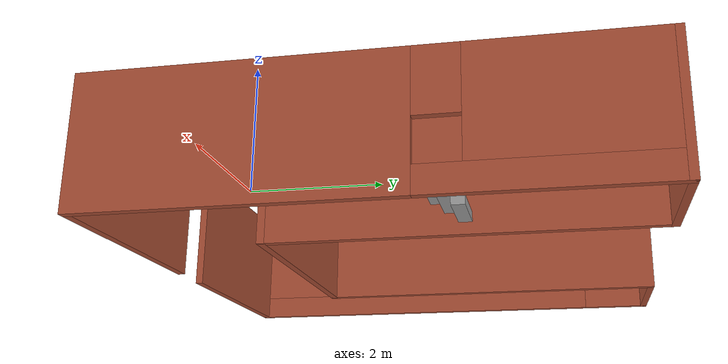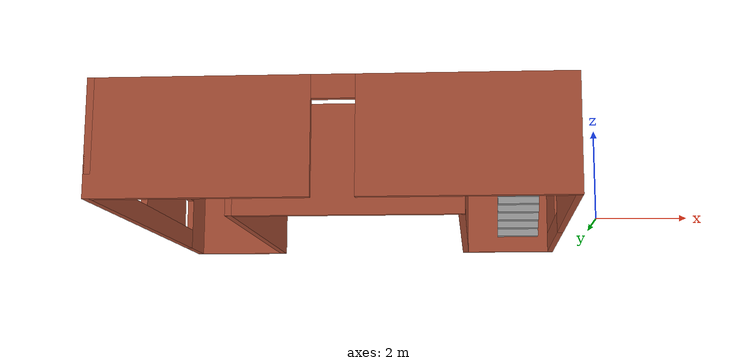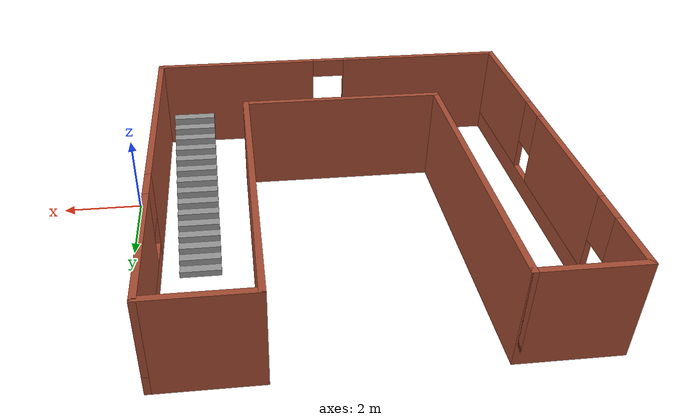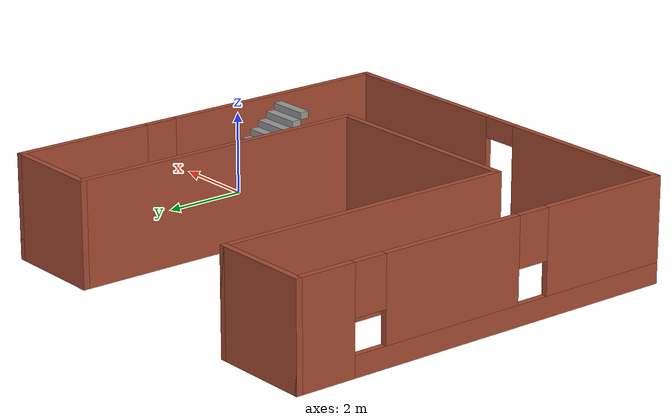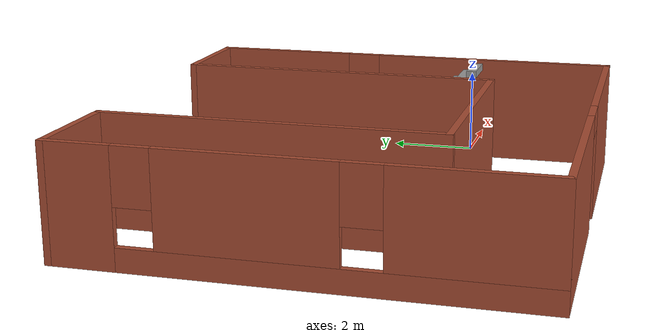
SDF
<?xml version='1.0'?>
<sdf version='1.6'>
  <model name='BuildingModel'>
    <pose frame=''>-5.28181 1.51106 0 0 -0 0</pose>
    <link name='Stairs_0'>
      <visual name='Stairs_0_Visual_0'>
        <pose frame=''>3.62997 1.43958 0.083333 0 -0 0</pose>
        <geometry>
          <box>
            <size>1 0.233333 0.166667</size>
          </box>
        </geometry>
        <material>
          <script>
            <uri>file://media/materials/scripts/gazebo.material</uri>
            <name>Gazebo/Grey</name>
          </script>
          <ambient>1 1 1 1</ambient>
        </material>
        <meta>
          <layer>0</layer>
        </meta>
      </visual>
      <collision name='Stairs_0_Collision_0'>
        <geometry>
          <box>
            <size>1 0.233333 0.166667</size>
          </box>
        </geometry>
        <pose frame=''>3.62997 1.43958 0.083333 0 -0 0</pose>
      </collision>
      <visual name='Stairs_0_Visual_1'>
        <pose frame=''>3.62997 1.20624 0.25 0 -0 0</pose>
        <geometry>
          <box>
            <size>1 0.233333 0.166667</size>
          </box>
        </geometry>
        <material>
          <script>
            <uri>file://media/materials/scripts/gazebo.material</uri>
            <name>Gazebo/Grey</name>
          </script>
          <ambient>1 1 1 1</ambient>
        </material>
        <meta>
          <layer>0</layer>
        </meta>
      </visual>
      <collision name='Stairs_0_Collision_1'>
        <geometry>
          <box>
            <size>1 0.233333 0.166667</size>
          </box>
        </geometry>
        <pose frame=''>3.62997 1.20624 0.25 0 -0 0</pose>
      </collision>
      <visual name='Stairs_0_Visual_2'>
        <pose frame=''>3.62997 0.972908 0.416667 0 -0 0</pose>
        <geometry>
          <box>
            <size>1 0.233333 0.166667</size>
          </box>
        </geometry>
        <material>
          <script>
            <uri>file://media/materials/scripts/gazebo.material</uri>
            <name>Gazebo/Grey</name>
          </script>
          <ambient>1 1 1 1</ambient>
        </material>
        <meta>
          <layer>0</layer>
        </meta>
      </visual>
      <collision name='Stairs_0_Collision_2'>
        <geometry>
          <box>
            <size>1 0.233333 0.166667</size>
          </box>
        </geometry>
        <pose frame=''>3.62997 0.972908 0.416667 0 -0 0</pose>
      </collision>
      <visual name='Stairs_0_Visual_3'>
        <pose frame=''>3.62997 0.739575 0.583333 0 -0 0</pose>
        <geometry>
          <box>
            <size>1 0.233333 0.166667</size>
          </box>
        </geometry>
        <material>
          <script>
            <uri>file://media/materials/scripts/gazebo.material</uri>
            <name>Gazebo/Grey</name>
          </script>
          <ambient>1 1 1 1</ambient>
        </material>
        <meta>
          <layer>0</layer>
        </meta>
      </visual>
      <collision name='Stairs_0_Collision_3'>
        <geometry>
          <box>
            <size>1 0.233333 0.166667</size>
          </box>
        </geometry>
        <pose frame=''>3.62997 0.739575 0.583333 0 -0 0</pose>
      </collision>
      <visual name='Stairs_0_Visual_4'>
        <pose frame=''>3.62997 0.506241 0.75 0 -0 0</pose>
        <geometry>
          <box>
            <size>1 0.233333 0.166667</size>
          </box>
        </geometry>
        <material>
          <script>
            <uri>file://media/materials/scripts/gazebo.material</uri>
            <name>Gazebo/Grey</name>
          </script>
          <ambient>1 1 1 1</ambient>
        </material>
        <meta>
          <layer>0</layer>
        </meta>
      </visual>
      <collision name='Stairs_0_Collision_4'>
        <geometry>
          <box>
            <size>1 0.233333 0.166667</size>
          </box>
        </geometry>
        <pose frame=''>3.62997 0.506241 0.75 0 -0 0</pose>
      </collision>
      <visual name='Stairs_0_Visual_5'>
        <pose frame=''>3.62997 0.272908 0.916667 0 -0 0</pose>
        <geometry>
          <box>
            <size>1 0.233333 0.166667</size>
          </box>
        </geometry>
        <material>
          <script>
            <uri>file://media/materials/scripts/gazebo.material</uri>
            <name>Gazebo/Grey</name>
          </script>
          <ambient>1 1 1 1</ambient>
        </material>
        <meta>
          <layer>0</layer>
        </meta>
      </visual>
      <collision name='Stairs_0_Collision_5'>
        <geometry>
          <box>
            <size>1 0.233333 0.166667</size>
          </box>
        </geometry>
        <pose frame=''>3.62997 0.272908 0.916667 0 -0 0</pose>
      </collision>
      <visual name='Stairs_0_Visual_6'>
        <pose frame=''>3.62997 0.039575 1.08333 0 -0 0</pose>
        <geometry>
          <box>
            <size>1 0.233333 0.166667</size>
          </box>
        </geometry>
        <material>
          <script>
            <uri>file://media/materials/scripts/gazebo.material</uri>
            <name>Gazebo/Grey</name>
          </script>
          <ambient>1 1 1 1</ambient>
        </material>
        <meta>
          <layer>0</layer>
        </meta>
      </visual>
      <collision name='Stairs_0_Collision_6'>
        <geometry>
          <box>
            <size>1 0.233333 0.166667</size>
          </box>
        </geometry>
        <pose frame=''>3.62997 0.039575 1.08333 0 -0 0</pose>
      </collision>
      <visual name='Stairs_0_Visual_7'>
        <pose frame=''>3.62997 -0.193759 1.25 0 -0 0</pose>
        <geometry>
          <box>
            <size>1 0.233333 0.166667</size>
          </box>
        </geometry>
        <material>
          <script>
            <uri>file://media/materials/scripts/gazebo.material</uri>
            <name>Gazebo/Grey</name>
          </script>
          <ambient>1 1 1 1</ambient>
        </material>
        <meta>
          <layer>0</layer>
        </meta>
      </visual>
      <collision name='Stairs_0_Collision_7'>
        <geometry>
          <box>
            <size>1 0.233333 0.166667</size>
          </box>
        </geometry>
        <pose frame=''>3.62997 -0.193759 1.25 0 -0 0</pose>
      </collision>
      <visual name='Stairs_0_Visual_8'>
        <pose frame=''>3.62997 -0.427092 1.41667 0 -0 0</pose>
        <geometry>
          <box>
            <size>1 0.233333 0.166667</size>
          </box>
        </geometry>
        <material>
          <script>
            <uri>file://media/materials/scripts/gazebo.material</uri>
            <name>Gazebo/Grey</name>
          </script>
          <ambient>1 1 1 1</ambient>
        </material>
        <meta>
          <layer>0</layer>
        </meta>
      </visual>
      <collision name='Stairs_0_Collision_8'>
        <geometry>
          <box>
            <size>1 0.233333 0.166667</size>
          </box>
        </geometry>
        <pose frame=''>3.62997 -0.427092 1.41667 0 -0 0</pose>
      </collision>
      <visual name='Stairs_0_Visual_9'>
        <pose frame=''>3.62997 -0.660425 1.58333 0 -0 0</pose>
        <geometry>
          <box>
            <size>1 0.233333 0.166667</size>
          </box>
        </geometry>
        <material>
          <script>
            <uri>file://media/materials/scripts/gazebo.material</uri>
            <name>Gazebo/Grey</name>
          </script>
          <ambient>1 1 1 1</ambient>
        </material>
        <meta>
          <layer>0</layer>
        </meta>
      </visual>
      <collision name='Stairs_0_Collision_9'>
        <geometry>
          <box>
            <size>1 0.233333 0.166667</size>
          </box>
        </geometry>
        <pose frame=''>3.62997 -0.660425 1.58333 0 -0 0</pose>
      </collision>
      <visual name='Stairs_0_Visual_10'>
        <pose frame=''>3.62997 -0.893759 1.75 0 -0 0</pose>
        <geometry>
          <box>
            <size>1 0.233333 0.166667</size>
          </box>
        </geometry>
        <material>
          <script>
            <uri>file://media/materials/scripts/gazebo.material</uri>
            <name>Gazebo/Grey</name>
          </script>
          <ambient>1 1 1 1</ambient>
        </material>
        <meta>
          <layer>0</layer>
        </meta>
      </visual>
      <collision name='Stairs_0_Collision_10'>
        <geometry>
          <box>
            <size>1 0.233333 0.166667</size>
          </box>
        </geometry>
        <pose frame=''>3.62997 -0.893759 1.75 0 -0 0</pose>
      </collision>
      <visual name='Stairs_0_Visual_11'>
        <pose frame=''>3.62997 -1.12709 1.91667 0 -0 0</pose>
        <geometry>
          <box>
            <size>1 0.233333 0.166667</size>
          </box>
        </geometry>
        <material>
          <script>
            <uri>file://media/materials/scripts/gazebo.material</uri>
            <name>Gazebo/Grey</name>
          </script>
          <ambient>1 1 1 1</ambient>
        </material>
        <meta>
          <layer>0</layer>
        </meta>
      </visual>
      <collision name='Stairs_0_Collision_11'>
        <geometry>
          <box>
            <size>1 0.233333 0.166667</size>
          </box>
        </geometry>
        <pose frame=''>3.62997 -1.12709 1.91667 0 -0 0</pose>
      </collision>
      <visual name='Stairs_0_Visual_12'>
        <pose frame=''>3.62997 -1.36042 2.08333 0 -0 0</pose>
        <geometry>
          <box>
            <size>1 0.233333 0.166667</size>
          </box>
        </geometry>
        <material>
          <script>
            <uri>file://media/materials/scripts/gazebo.material</uri>
            <name>Gazebo/Grey</name>
          </script>
          <ambient>1 1 1 1</ambient>
        </material>
        <meta>
          <layer>0</layer>
        </meta>
      </visual>
      <collision name='Stairs_0_Collision_12'>
        <geometry>
          <box>
            <size>1 0.233333 0.166667</size>
          </box>
        </geometry>
        <pose frame=''>3.62997 -1.36042 2.08333 0 -0 0</pose>
      </collision>
      <visual name='Stairs_0_Visual_13'>
        <pose frame=''>3.62997 -1.59376 2.25 0 -0 0</pose>
        <geometry>
          <box>
            <size>1 0.233333 0.166667</size>
          </box>
        </geometry>
        <material>
          <script>
            <uri>file://media/materials/scripts/gazebo.material</uri>
            <name>Gazebo/Grey</name>
          </script>
          <ambient>1 1 1 1</ambient>
        </material>
        <meta>
          <layer>0</layer>
        </meta>
      </visual>
      <collision name='Stairs_0_Collision_13'>
        <geometry>
          <box>
            <size>1 0.233333 0.166667</size>
          </box>
        </geometry>
        <pose frame=''>3.62997 -1.59376 2.25 0 -0 0</pose>
      </collision>
      <visual name='Stairs_0_Visual_14'>
        <pose frame=''>3.62997 -1.82709 2.41667 0 -0 0</pose>
        <geometry>
          <box>
            <size>1 0.233333 0.166667</size>
          </box>
        </geometry>
        <material>
          <script>
            <uri>file://media/materials/scripts/gazebo.material</uri>
            <name>Gazebo/Grey</name>
          </script>
          <ambient>1 1 1 1</ambient>
        </material>
        <meta>
          <layer>0</layer>
        </meta>
      </visual>
      <collision name='Stairs_0_Collision_14'>
        <geometry>
          <box>
            <size>1 0.233333 0.166667</size>
          </box>
        </geometry>
        <pose frame=''>3.62997 -1.82709 2.41667 0 -0 0</pose>
      </collision>
    </link>
    <link name='Wall_23'>
      <pose frame=''>-5.20681 0 0 0 -0 -1.5708</pose>
      <visual name='Wall_23_Visual_0'>
        <pose frame=''>-4.25461 0 1.25 0 -0 0</pose>
        <geometry>
          <box>
            <size>1.49078 0.15 2.5</size>
          </box>
        </geometry>
        <material>
          <script>
            <uri>file://media/materials/scripts/gazebo.material</uri>
            <name>Gazebo/Bricks</name>
          </script>
          <ambient>0.435294 0.796078 0.67451 1</ambient>
        </material>
        <meta>
          <layer>0</layer>
        </meta>
      </visual>
      <collision name='Wall_23_Collision_0'>
        <geometry>
          <box>
            <size>1.49078 0.15 2.5</size>
          </box>
        </geometry>
        <pose frame=''>-4.25461 0 1.25 0 -0 0</pose>
      </collision>
      <visual name='Wall_23_Visual_1'>
        <pose frame=''>0.745388 0 0.25 0 -0 0</pose>
        <geometry>
          <box>
            <size>8.50922 0.15 0.5</size>
          </box>
        </geometry>
        <material>
          <script>
            <uri>file://media/materials/scripts/gazebo.material</uri>
            <name>Gazebo/Bricks</name>
          </script>
          <ambient>0.435294 0.796078 0.67451 1</ambient>
        </material>
        <meta>
          <layer>0</layer>
        </meta>
      </visual>
      <collision name='Wall_23_Collision_1'>
        <geometry>
          <box>
            <size>8.50922 0.15 0.5</size>
          </box>
        </geometry>
        <pose frame=''>0.745388 0 0.25 0 -0 0</pose>
      </collision>
      <visual name='Wall_23_Visual_2'>
        <pose frame=''>-0.904353 0 1.5 0 -0 0</pose>
        <geometry>
          <box>
            <size>3.60974 0.15 2</size>
          </box>
        </geometry>
        <material>
          <script>
            <uri>file://media/materials/scripts/gazebo.material</uri>
            <name>Gazebo/Bricks</name>
          </script>
          <ambient>0.435294 0.796078 0.67451 1</ambient>
        </material>
        <meta>
          <layer>0</layer>
        </meta>
      </visual>
      <collision name='Wall_23_Collision_2'>
        <geometry>
          <box>
            <size>3.60974 0.15 2</size>
          </box>
        </geometry>
        <pose frame=''>-0.904353 0 1.5 0 -0 0</pose>
      </collision>
      <visual name='Wall_23_Visual_3'>
        <pose frame=''>3.35026 0 1.5 0 -0 0</pose>
        <geometry>
          <box>
            <size>3.29948 0.15 2</size>
          </box>
        </geometry>
        <material>
          <script>
            <uri>file://media/materials/scripts/gazebo.material</uri>
            <name>Gazebo/Bricks</name>
          </script>
          <ambient>0.435294 0.796078 0.67451 1</ambient>
        </material>
        <meta>
          <layer>0</layer>
        </meta>
      </visual>
      <collision name='Wall_23_Collision_3'>
        <geometry>
          <box>
            <size>3.29948 0.15 2</size>
          </box>
        </geometry>
        <pose frame=''>3.35026 0 1.5 0 -0 0</pose>
      </collision>
      <visual name='Wall_23_Visual_4'>
        <pose frame=''>-3.10922 0 1.9 0 -0 0</pose>
        <geometry>
          <box>
            <size>0.8 0.15 1.2</size>
          </box>
        </geometry>
        <material>
          <script>
            <uri>file://media/materials/scripts/gazebo.material</uri>
            <name>Gazebo/Bricks</name>
          </script>
          <ambient>0.435294 0.796078 0.67451 1</ambient>
        </material>
        <meta>
          <layer>0</layer>
        </meta>
      </visual>
      <collision name='Wall_23_Collision_4'>
        <geometry>
          <box>
            <size>0.8 0.15 1.2</size>
          </box>
        </geometry>
        <pose frame=''>-3.10922 0 1.9 0 -0 0</pose>
      </collision>
      <visual name='Wall_23_Visual_5'>
        <pose frame=''>1.30052 0 1.9 0 -0 0</pose>
        <geometry>
          <box>
            <size>0.8 0.15 1.2</size>
          </box>
        </geometry>
        <material>
          <script>
            <uri>file://media/materials/scripts/gazebo.material</uri>
            <name>Gazebo/Bricks</name>
          </script>
          <ambient>0.435294 0.796078 0.67451 1</ambient>
        </material>
        <meta>
          <layer>0</layer>
        </meta>
      </visual>
      <collision name='Wall_23_Collision_5'>
        <geometry>
          <box>
            <size>0.8 0.15 1.2</size>
          </box>
        </geometry>
        <pose frame=''>1.30052 0 1.9 0 -0 0</pose>
      </collision>
    </link>
    <link name='Wall_24'>
      <pose frame=''>-0.281808 -4.925 0 0 -0 0</pose>
      <visual name='Wall_24_Visual_0'>
        <pose frame=''>-2.70594 0 1.25 0 -0 0</pose>
        <geometry>
          <box>
            <size>4.58812 0.15 2.5</size>
          </box>
        </geometry>
        <material>
          <script>
            <uri>file://media/materials/scripts/gazebo.material</uri>
            <name>Gazebo/Bricks</name>
          </script>
          <ambient>0.435294 0.796078 0.67451 1</ambient>
        </material>
        <meta>
          <layer>0</layer>
        </meta>
      </visual>
      <collision name='Wall_24_Collision_0'>
        <geometry>
          <box>
            <size>4.58812 0.15 2.5</size>
          </box>
        </geometry>
        <pose frame=''>-2.70594 0 1.25 0 -0 0</pose>
      </collision>
      <visual name='Wall_24_Visual_1'>
        <pose frame=''>2.74406 0 1.25 0 -0 0</pose>
        <geometry>
          <box>
            <size>4.51188 0.15 2.5</size>
          </box>
        </geometry>
        <material>
          <script>
            <uri>file://media/materials/scripts/gazebo.material</uri>
            <name>Gazebo/Bricks</name>
          </script>
          <ambient>0.435294 0.796078 0.67451 1</ambient>
        </material>
        <meta>
          <layer>0</layer>
        </meta>
      </visual>
      <collision name='Wall_24_Collision_1'>
        <geometry>
          <box>
            <size>4.51188 0.15 2.5</size>
          </box>
        </geometry>
        <pose frame=''>2.74406 0 1.25 0 -0 0</pose>
      </collision>
      <visual name='Wall_24_Visual_2'>
        <pose frame=''>0.038121 0 2.25 0 -0 0</pose>
        <geometry>
          <box>
            <size>0.9 0.15 0.5</size>
          </box>
        </geometry>
        <material>
          <script>
            <uri>file://media/materials/scripts/gazebo.material</uri>
            <name>Gazebo/Bricks</name>
          </script>
          <ambient>0.435294 0.796078 0.67451 1</ambient>
        </material>
        <meta>
          <layer>0</layer>
        </meta>
      </visual>
      <collision name='Wall_24_Collision_2'>
        <geometry>
          <box>
            <size>0.9 0.15 0.5</size>
          </box>
        </geometry>
        <pose frame=''>0.038121 0 2.25 0 -0 0</pose>
      </collision>
    </link>
    <link name='Wall_25'>
      <pose frame=''>4.64319 0 0 0 -0 1.5708</pose>
      <visual name='Wall_25_Visual_0'>
        <pose frame=''>-2.10515 0 1.25 0 -0 0</pose>
        <geometry>
          <box>
            <size>5.78969 0.15 2.5</size>
          </box>
        </geometry>
        <material>
          <script>
            <uri>file://media/materials/scripts/gazebo.material</uri>
            <name>Gazebo/Bricks</name>
          </script>
          <ambient>0.435294 0.796078 0.67451 1</ambient>
        </material>
        <meta>
          <layer>0</layer>
        </meta>
      </visual>
      <collision name='Wall_25_Collision_0'>
        <geometry>
          <box>
            <size>5.78969 0.15 2.5</size>
          </box>
        </geometry>
        <pose frame=''>-2.10515 0 1.25 0 -0 0</pose>
      </collision>
      <visual name='Wall_25_Visual_1'>
        <pose frame=''>2.89485 0 0.25 0 -0 0</pose>
        <geometry>
          <box>
            <size>4.21031 0.15 0.5</size>
          </box>
        </geometry>
        <material>
          <script>
            <uri>file://media/materials/scripts/gazebo.material</uri>
            <name>Gazebo/Bricks</name>
          </script>
          <ambient>0.435294 0.796078 0.67451 1</ambient>
        </material>
        <meta>
          <layer>0</layer>
        </meta>
      </visual>
      <collision name='Wall_25_Collision_1'>
        <geometry>
          <box>
            <size>4.21031 0.15 0.5</size>
          </box>
        </geometry>
        <pose frame=''>2.89485 0 0.25 0 -0 0</pose>
      </collision>
      <visual name='Wall_25_Visual_2'>
        <pose frame=''>3.29485 0 1.5 0 -0 0</pose>
        <geometry>
          <box>
            <size>3.41031 0.15 2</size>
          </box>
        </geometry>
        <material>
          <script>
            <uri>file://media/materials/scripts/gazebo.material</uri>
            <name>Gazebo/Bricks</name>
          </script>
          <ambient>0.435294 0.796078 0.67451 1</ambient>
        </material>
        <meta>
          <layer>0</layer>
        </meta>
      </visual>
      <collision name='Wall_25_Collision_2'>
        <geometry>
          <box>
            <size>3.41031 0.15 2</size>
          </box>
        </geometry>
        <pose frame=''>3.29485 0 1.5 0 -0 0</pose>
      </collision>
      <visual name='Wall_25_Visual_3'>
        <pose frame=''>1.18969 0 1.9 0 -0 0</pose>
        <geometry>
          <box>
            <size>0.8 0.15 1.2</size>
          </box>
        </geometry>
        <material>
          <script>
            <uri>file://media/materials/scripts/gazebo.material</uri>
            <name>Gazebo/Bricks</name>
          </script>
          <ambient>0.435294 0.796078 0.67451 1</ambient>
        </material>
        <meta>
          <layer>0</layer>
        </meta>
      </visual>
      <collision name='Wall_25_Collision_3'>
        <geometry>
          <box>
            <size>0.8 0.15 1.2</size>
          </box>
        </geometry>
        <pose frame=''>1.18969 0 1.9 0 -0 0</pose>
      </collision>
    </link>
    <link name='Wall_26'>
      <collision name='Wall_26_Collision'>
        <geometry>
          <box>
            <size>2.5 0.15 2.5</size>
          </box>
        </geometry>
        <pose frame=''>0 0 1.25 0 -0 0</pose>
      </collision>
      <visual name='Wall_26_Visual'>
        <pose frame=''>0 0 1.25 0 -0 0</pose>
        <geometry>
          <box>
            <size>2.5 0.15 2.5</size>
          </box>
        </geometry>
        <material>
          <script>
            <uri>file://media/materials/scripts/gazebo.material</uri>
            <name>Gazebo/Bricks</name>
          </script>
          <ambient>0.435294 0.796078 0.67451 1</ambient>
        </material>
        <meta>
          <layer>0</layer>
        </meta>
      </visual>
      <pose frame=''>3.46819 4.925 0 0 -0 3.14159</pose>
    </link>
    <link name='Wall_28'>
      <collision name='Wall_28_Collision'>
        <geometry>
          <box>
            <size>2.5 0.15 2.5</size>
          </box>
        </geometry>
        <pose frame=''>0 0 1.25 0 -0 0</pose>
      </collision>
      <visual name='Wall_28_Visual'>
        <pose frame=''>0 0 1.25 0 -0 0</pose>
        <geometry>
          <box>
            <size>2.5 0.15 2.5</size>
          </box>
        </geometry>
        <material>
          <script>
            <uri>file://media/materials/scripts/gazebo.material</uri>
            <name>Gazebo/Bricks</name>
          </script>
          <ambient>0.435294 0.796078 0.67451 1</ambient>
        </material>
        <meta>
          <layer>0</layer>
        </meta>
      </visual>
      <pose frame=''>-4.03181 4.925 0 0 -0 0</pose>
    </link>
    <link name='Wall_29'>
      <collision name='Wall_29_Collision'>
        <geometry>
          <box>
            <size>7.5 0.15 2.5</size>
          </box>
        </geometry>
        <pose frame=''>0 0 1.25 0 -0 0</pose>
      </collision>
      <visual name='Wall_29_Visual'>
        <pose frame=''>0 0 1.25 0 -0 0</pose>
        <geometry>
          <box>
            <size>7.5 0.15 2.5</size>
          </box>
        </geometry>
        <material>
          <script>
            <uri>file://media/materials/scripts/gazebo.material</uri>
            <name>Gazebo/Bricks</name>
          </script>
          <ambient>0.435294 0.796078 0.67451 1</ambient>
        </material>
        <meta>
          <layer>0</layer>
        </meta>
      </visual>
      <pose frame=''>-2.85681 1.25 0 0 -0 -1.5708</pose>
    </link>
    <link name='Wall_31'>
      <collision name='Wall_31_Collision'>
        <geometry>
          <box>
            <size>7.5 0.15 2.5</size>
          </box>
        </geometry>
        <pose frame=''>0 0 1.25 0 -0 0</pose>
      </collision>
      <visual name='Wall_31_Visual'>
        <pose frame=''>0 0 1.25 0 -0 0</pose>
        <geometry>
          <box>
            <size>7.5 0.15 2.5</size>
          </box>
        </geometry>
        <material>
          <script>
            <uri>file://media/materials/scripts/gazebo.material</uri>
            <name>Gazebo/Bricks</name>
          </script>
          <ambient>0.435294 0.796078 0.67451 1</ambient>
        </material>
        <meta>
          <layer>0</layer>
        </meta>
      </visual>
      <pose frame=''>2.29319 1.25 0 0 -0 -1.5708</pose>
    </link>
    <link name='Wall_32'>
      <collision name='Wall_32_Collision'>
        <geometry>
          <box>
            <size>5.3 0.15 2.5</size>
          </box>
        </geometry>
        <pose frame=''>0 0 1.25 0 -0 0</pose>
      </collision>
      <visual name='Wall_32_Visual'>
        <pose frame=''>0 0 1.25 0 -0 0</pose>
        <geometry>
          <box>
            <size>5.3 0.15 2.5</size>
          </box>
        </geometry>
        <material>
          <script>
            <uri>file://media/materials/scripts/gazebo.material</uri>
            <name>Gazebo/Bricks</name>
          </script>
          <ambient>0.435294 0.796078 0.67451 1</ambient>
        </material>
        <meta>
          <layer>0</layer>
        </meta>
      </visual>
      <pose frame=''>-0.281808 -2.425 0 0 -0 3.14159</pose>
    </link>
    <static>1</static>
  </model>
</sdf>
